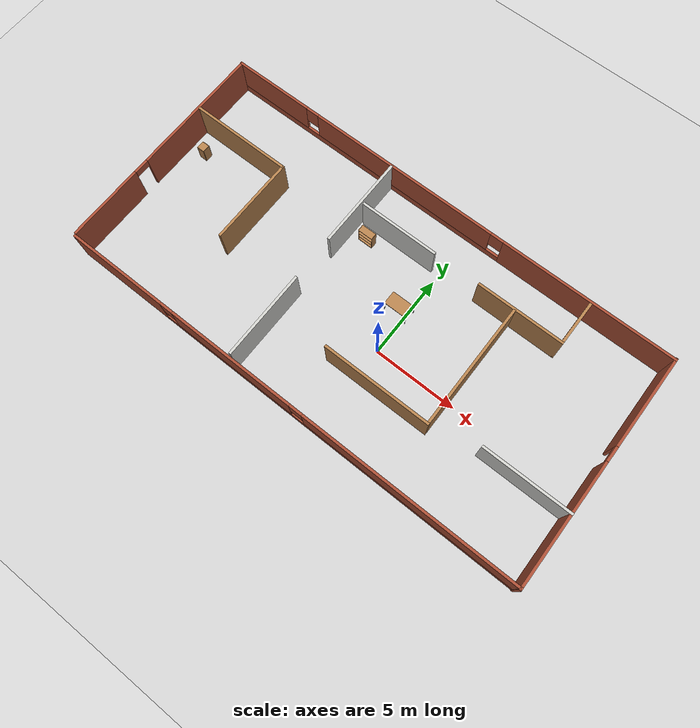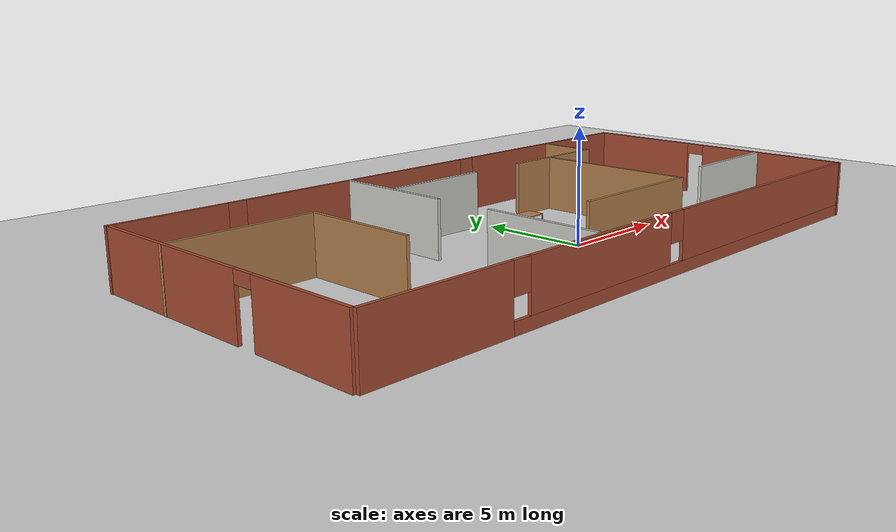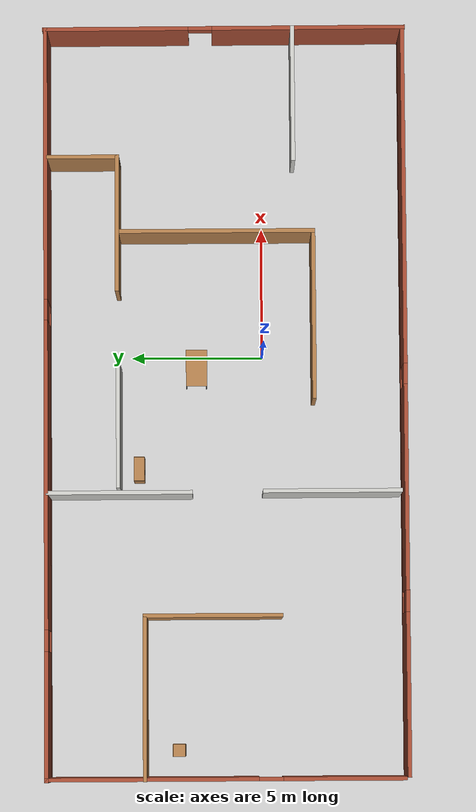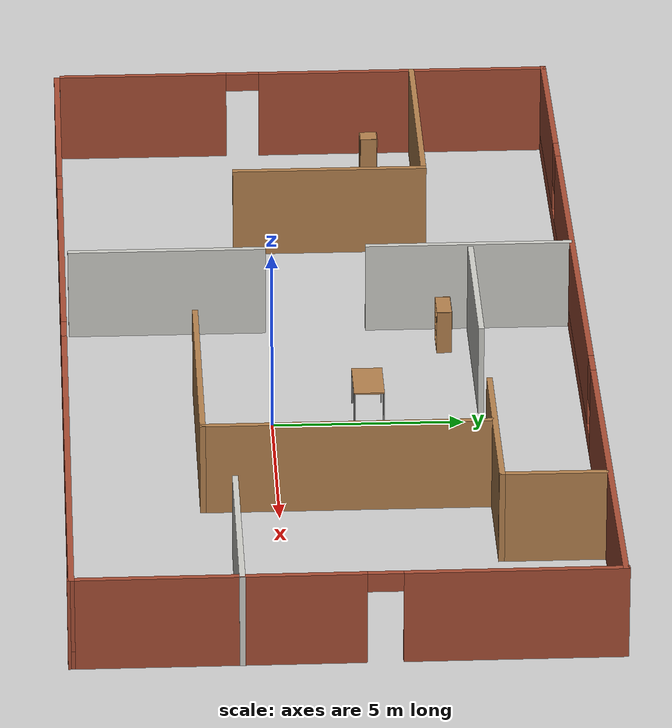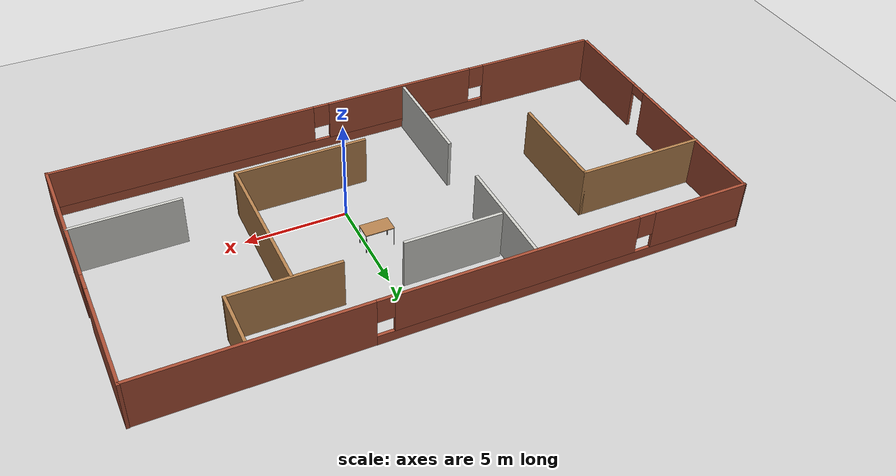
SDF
<sdf version="1.6">
 <world name="default">
  <light name="sun" type="directional">
   <pose>0 0 10 0 -0 0</pose>
   <diffuse>0.8 0.8 0.8 1</diffuse>
   <specular>0.1 0.1 0.1 1</specular>
   <attenuation>
    <range>1000</range>
    <constant>0.9</constant>
    <linear>0.01</linear>
    <quadratic>0.001</quadratic>
   </attenuation>
   <direction>-0.5 0.5 -1</direction>
  </light>
  <model name="ground_plane">
   <static>1</static>
   <link name="link">
    <collision name="collision">
     <geometry><plane><normal>0 0 1</normal><size>100 100</size></plane></geometry>
     <surface><friction><ode><mu>100</mu><mu2>50</mu2></ode></friction></surface>
    </collision>
    <visual name="visual">
     <cast_shadows>0</cast_shadows>
     <geometry><plane><normal>0 0 1</normal><size>100 100</size></plane></geometry>
     <material>
      <script><uri>file://media/materials/scripts/gazebo.material</uri><name>Gazebo/Grey</name></script>
     </material>
    </visual>
   </link>
  </model>
  <gravity>0 0 -9.8</gravity>
  <magnetic_field>6e-06 2.3e-05 -4.2e-05</magnetic_field>
  <atmosphere type="adiabatic"/>
  <physics name="default_physics" default="0" type="ode">
   <max_step_size>0.001</max_step_size>
   <real_time_factor>1</real_time_factor>
   <real_time_update_rate>1000</real_time_update_rate>
  </physics>
  <scene><ambient>0.4 0.4 0.4 1</ambient><background>0.7 0.7 0.7 1</background><shadows>1</shadows></scene>
  <spherical_coordinates>
   <surface_model>EARTH_WGS84</surface_model>
   <latitude_deg>0</latitude_deg>
   <longitude_deg>0</longitude_deg>
   <elevation>0</elevation>
   <heading_deg>0</heading_deg>
  </spherical_coordinates>
  <model name="wall2">
   <pose>-1.83862 1.41721 0 0 -0 0</pose>
   <link name="Wall_0">
    <pose>0.0701 -6.80102 0 0 0 -0.002151</pose>
    <visual name="Wall_0_Visual_0">
     <pose>-11.2183 0 1.25 0 -0 0</pose>
     <geometry><box><size>6.15515 0.15 2.5</size></box></geometry>
     <material>
      <script><uri>file://media/materials/scripts/gazebo.material</uri><name>Gazebo/Bricks</name></script>
      <ambient>1 1 1 1</ambient>
     </material>
    </visual>
    <collision name="Wall_0_Collision_0">
     <geometry><box><size>6.15515 0.15 2.5</size></box></geometry>
     <pose>-11.2183 0 1.25 0 -0 0</pose>
    </collision>
    <visual name="Wall_0_Visual_1">
     <pose>3.07757 0 0.25 0 -0 0</pose>
     <geometry><box><size>22.4367 0.15 0.5</size></box></geometry>
     <material>
      <script><uri>file://media/materials/scripts/gazebo.material</uri><name>Gazebo/Bricks</name></script>
      <ambient>1 1 1 1</ambient>
     </material>
    </visual>
    <collision name="Wall_0_Collision_1">
     <geometry><box><size>22.4367 0.15 0.5</size></box></geometry>
     <pose>3.07757 0 0.25 0 -0 0</pose>
    </collision>
    <visual name="Wall_0_Visual_2">
     <pose>-3.44996 0 1.5 0 -0 0</pose>
     <geometry><box><size>7.78163 0.15 2</size></box></geometry>
     <material>
      <script><uri>file://media/materials/scripts/gazebo.material</uri><name>Gazebo/Bricks</name></script>
      <ambient>1 1 1 1</ambient>
     </material>
    </visual>
    <collision name="Wall_0_Collision_2">
     <geometry><box><size>7.78163 0.15 2</size></box></geometry>
     <pose>-3.44996 0 1.5 0 -0 0</pose>
    </collision>
    <visual name="Wall_0_Visual_3">
     <pose>7.76839 0 1.5 0 -0 0</pose>
     <geometry><box><size>13.0551 0.15 2</size></box></geometry>
     <material>
      <script><uri>file://media/materials/scripts/gazebo.material</uri><name>Gazebo/Bricks</name></script>
      <ambient>1 1 1 1</ambient>
     </material>
    </visual>
    <collision name="Wall_0_Collision_3">
     <geometry><box><size>13.0551 0.15 2</size></box></geometry>
     <pose>7.76839 0 1.5 0 -0 0</pose>
    </collision>
    <visual name="Wall_0_Visual_4">
     <pose>-7.74077 0 1.9 0 -0 0</pose>
     <geometry><box><size>0.8 0.15 1.2</size></box></geometry>
     <material>
      <script><uri>file://media/materials/scripts/gazebo.material</uri><name>Gazebo/Bricks</name></script>
      <ambient>1 1 1 1</ambient>
     </material>
    </visual>
    <collision name="Wall_0_Collision_4">
     <geometry><box><size>0.8 0.15 1.2</size></box></geometry>
     <pose>-7.74077 0 1.9 0 -0 0</pose>
    </collision>
    <visual name="Wall_0_Visual_5">
     <pose>0.840861 0 1.9 0 -0 0</pose>
     <geometry><box><size>0.8 0.15 1.2</size></box></geometry>
     <material>
      <script><uri>file://media/materials/scripts/gazebo.material</uri><name>Gazebo/Bricks</name></script>
      <ambient>1 1 1 1</ambient>
     </material>
    </visual>
    <collision name="Wall_0_Collision_5">
     <geometry><box><size>0.8 0.15 1.2</size></box></geometry>
     <pose>0.840861 0 1.9 0 -0 0</pose>
    </collision>
   </link>
   <link name="Wall_1">
    <pose>14.2757 0 0 0 -0 1.57302</pose>
    <visual name="Wall_1_Visual_0">
     <pose>-3.24103 0 1.25 0 -0 0</pose>
     <geometry><box><size>7.39238 0.15 2.5</size></box></geometry>
     <material>
      <script><uri>file://media/materials/scripts/gazebo.material</uri><name>Gazebo/Bricks</name></script>
      <ambient>1 1 1 1</ambient>
     </material>
    </visual>
    <collision name="Wall_1_Collision_0">
     <geometry><box><size>7.39238 0.15 2.5</size></box></geometry>
     <pose>-3.24103 0 1.25 0 -0 0</pose>
    </collision>
    <visual name="Wall_1_Visual_1">
     <pose>4.14619 0 1.25 0 -0 0</pose>
     <geometry><box><size>5.58206 0.15 2.5</size></box></geometry>
     <material>
      <script><uri>file://media/materials/scripts/gazebo.material</uri><name>Gazebo/Bricks</name></script>
      <ambient>1 1 1 1</ambient>
     </material>
    </visual>
    <collision name="Wall_1_Collision_1">
     <geometry><box><size>5.58206 0.15 2.5</size></box></geometry>
     <pose>4.14619 0 1.25 0 -0 0</pose>
    </collision>
    <visual name="Wall_1_Visual_2">
     <pose>0.905161 0 2.25 0 -0 0</pose>
     <geometry><box><size>0.9 0.15 0.5</size></box></geometry>
     <material>
      <script><uri>file://media/materials/scripts/gazebo.material</uri><name>Gazebo/Bricks</name></script>
      <ambient>1 1 1 1</ambient>
     </material>
    </visual>
    <collision name="Wall_1_Collision_2">
     <geometry><box><size>0.9 0.15 0.5</size></box></geometry>
     <pose>0.905161 0 2.25 0 -0 0</pose>
    </collision>
   </link>
   <link name="Wall_10">
    <collision name="Wall_10_Collision">
     <geometry><box><size>5.25 0.15 2.5</size></box></geometry>
     <pose>0 0 1.25 0 -0 0</pose>
    </collision>
    <visual name="Wall_10_Visual">
     <pose>0 0 1.25 0 -0 0</pose>
     <geometry><box><size>5.25 0.15 2.5</size></box></geometry>
     <material>
      <script><uri>file://media/materials/scripts/gazebo.material</uri><name>Gazebo/CeilingTiled</name></script>
      <ambient>1 0.764706 0.305882 1</ambient>
     </material>
    </visual>
    <pose>-3.51097 -4.01292 0 0 0 -1.5708</pose>
   </link>
   <link name="Wall_12">
    <collision name="Wall_12_Collision">
     <geometry><box><size>4.75 0.15 2.5</size></box></geometry>
     <pose>0 0 1.25 0 -0 0</pose>
    </collision>
    <visual name="Wall_12_Visual">
     <pose>0 0 1.25 0 -0 0</pose>
     <geometry><box><size>4.75 0.15 2.5</size></box></geometry>
     <material>
      <script><uri>file://media/materials/scripts/gazebo.material</uri><name>Gazebo/CeilingTiled</name></script>
      <ambient>1 1 1 1</ambient>
     </material>
    </visual>
    <pose>-0.999901 4.06014 0 0 -0 0</pose>
   </link>
   <link name="Wall_14">
    <collision name="Wall_14_Collision">
     <geometry><box><size>5.25 0.15 2.5</size></box></geometry>
     <pose>0 0 1.25 0 -0 0</pose>
    </collision>
    <visual name="Wall_14_Visual">
     <pose>0 0 1.25 0 -0 0</pose>
     <geometry><box><size>5.25 0.15 2.5</size></box></geometry>
     <material>
      <script><uri>file://media/materials/scripts/gazebo.material</uri><name>Gazebo/Wood</name></script>
      <ambient>1 1 1 1</ambient>
     </material>
    </visual>
    <pose>6.74318 4.09532 0 0 -0 0</pose>
   </link>
   <link name="Wall_16">
    <collision name="Wall_16_Collision">
     <geometry><box><size>2.75 0.15 2.5</size></box></geometry>
     <pose>0 0 1.25 0 -0 0</pose>
    </collision>
    <visual name="Wall_16_Visual">
     <pose>0 0 1.25 0 -0 0</pose>
     <geometry><box><size>2.75 0.15 2.5</size></box></geometry>
     <material>
      <script><uri>file://media/materials/scripts/gazebo.material</uri><name>Gazebo/Wood</name></script>
      <ambient>1 1 1 1</ambient>
     </material>
    </visual>
    <pose>9.29317 5.39532 0 0 -0 1.5708</pose>
   </link>
   <link name="Wall_18">
    <collision name="Wall_18_Collision">
     <geometry><box><size>7.5 0.15 2.5</size></box></geometry>
     <pose>0 0 1.25 0 -0 0</pose>
    </collision>
    <visual name="Wall_18_Visual">
     <pose>0 0 1.25 0 -0 0</pose>
     <geometry><box><size>7.5 0.15 2.5</size></box></geometry>
     <material>
      <script><uri>file://media/materials/scripts/gazebo.material</uri><name>Gazebo/Wood</name></script>
      <ambient>1 1 1 1</ambient>
     </material>
    </visual>
    <pose>6.40944 0.314786 0 0 0 -1.5708</pose>
   </link>
   <link name="Wall_2">
    <pose>-0.015256 6.78573 0 0 0 -3.13838</pose>
    <visual name="Wall_2_Visual_0">
     <pose>-9.09297 0 1.25 0 -0 0</pose>
     <geometry><box><size>10.5155 0.15 2.5</size></box></geometry>
     <material>
      <script><uri>file://media/materials/scripts/gazebo.material</uri><name>Gazebo/Bricks</name></script>
      <ambient>1 1 1 1</ambient>
     </material>
    </visual>
    <collision name="Wall_2_Collision_0">
     <geometry><box><size>10.5155 0.15 2.5</size></box></geometry>
     <pose>-9.09297 0 1.25 0 -0 0</pose>
    </collision>
    <visual name="Wall_2_Visual_1">
     <pose>5.25776 0 0.25 0 -0 0</pose>
     <geometry><box><size>18.1859 0.15 0.5</size></box></geometry>
     <material>
      <script><uri>file://media/materials/scripts/gazebo.material</uri><name>Gazebo/Bricks</name></script>
      <ambient>1 1 1 1</ambient>
     </material>
    </visual>
    <collision name="Wall_2_Collision_1">
     <geometry><box><size>18.1859 0.15 0.5</size></box></geometry>
     <pose>5.25776 0 0.25 0 -0 0</pose>
    </collision>
    <visual name="Wall_2_Visual_2">
     <pose>2.81619 0 1.5 0 -0 0</pose>
     <geometry><box><size>11.7028 0.15 2</size></box></geometry>
     <material>
      <script><uri>file://media/materials/scripts/gazebo.material</uri><name>Gazebo/Bricks</name></script>
      <ambient>1 1 1 1</ambient>
     </material>
    </visual>
    <collision name="Wall_2_Collision_2">
     <geometry><box><size>11.7028 0.15 2</size></box></geometry>
     <pose>2.81619 0 1.5 0 -0 0</pose>
    </collision>
    <visual name="Wall_2_Visual_3">
     <pose>11.9092 0 1.5 0 -0 0</pose>
     <geometry><box><size>4.88314 0.15 2</size></box></geometry>
     <material>
      <script><uri>file://media/materials/scripts/gazebo.material</uri><name>Gazebo/Bricks</name></script>
      <ambient>1 1 1 1</ambient>
     </material>
    </visual>
    <collision name="Wall_2_Collision_3">
     <geometry><box><size>4.88314 0.15 2</size></box></geometry>
     <pose>11.9092 0 1.5 0 -0 0</pose>
    </collision>
    <visual name="Wall_2_Visual_4">
     <pose>-3.43521 0 1.9 0 -0 0</pose>
     <geometry><box><size>0.8 0.15 1.2</size></box></geometry>
     <material>
      <script><uri>file://media/materials/scripts/gazebo.material</uri><name>Gazebo/Bricks</name></script>
      <ambient>1 1 1 1</ambient>
     </material>
    </visual>
    <collision name="Wall_2_Collision_4">
     <geometry><box><size>0.8 0.15 1.2</size></box></geometry>
     <pose>-3.43521 0 1.9 0 -0 0</pose>
    </collision>
    <visual name="Wall_2_Visual_5">
     <pose>9.06759 0 1.9 0 -0 0</pose>
     <geometry><box><size>0.8 0.15 1.2</size></box></geometry>
     <material>
      <script><uri>file://media/materials/scripts/gazebo.material</uri><name>Gazebo/Bricks</name></script>
      <ambient>1 1 1 1</ambient>
     </material>
    </visual>
    <collision name="Wall_2_Collision_5">
     <geometry><box><size>0.8 0.15 1.2</size></box></geometry>
     <pose>9.06759 0 1.9 0 -0 0</pose>
    </collision>
   </link>
   <link name="Wall_20">
    <collision name="Wall_20_Collision">
     <geometry><box><size>6.5 0.15 2.5</size></box></geometry>
     <pose>0 0 1.25 0 -0 0</pose>
    </collision>
    <visual name="Wall_20_Visual">
     <pose>0 0 1.25 0 -0 0</pose>
     <geometry><box><size>6.5 0.15 2.5</size></box></geometry>
     <material>
      <script><uri>file://media/materials/scripts/gazebo.material</uri><name>Gazebo/Wood</name></script>
      <ambient>1 1 1 1</ambient>
     </material>
    </visual>
    <pose>3.23444 -3.36021 0 0 -0 3.14159</pose>
   </link>
   <link name="Wall_22">
    <collision name="Wall_22_Collision">
     <geometry><box><size>5.25 0.15 2.5</size></box></geometry>
     <pose>0 0 1.25 0 -0 0</pose>
    </collision>
    <visual name="Wall_22_Visual">
     <pose>0 0 1.25 0 -0 0</pose>
     <geometry><box><size>5.25 0.15 2.5</size></box></geometry>
     <material>
      <script><uri>file://media/materials/scripts/gazebo.material</uri><name>Gazebo/CeilingTiled</name></script>
      <ambient>1 1 1 1</ambient>
     </material>
    </visual>
    <pose>11.7395 -2.62382 0 0 -0 3.14159</pose>
   </link>
   <link name="Wall_3">
    <pose>-14.2603 0.06484 0 0 0 -1.5708</pose>
    <visual name="Wall_3_Visual_0">
     <pose>-2.75484 0 1.25 0 -0 0</pose>
     <geometry><box><size>7.99032 0.15 2.5</size></box></geometry>
     <material>
      <script><uri>file://media/materials/scripts/gazebo.material</uri><name>Gazebo/Bricks</name></script>
      <ambient>1 1 1 1</ambient>
     </material>
    </visual>
    <collision name="Wall_3_Collision_0">
     <geometry><box><size>7.99032 0.15 2.5</size></box></geometry>
     <pose>-2.75484 0 1.25 0 -0 0</pose>
    </collision>
    <visual name="Wall_3_Visual_1">
     <pose>4.44516 0 1.25 0 -0 0</pose>
     <geometry><box><size>4.60968 0.15 2.5</size></box></geometry>
     <material>
      <script><uri>file://media/materials/scripts/gazebo.material</uri><name>Gazebo/Bricks</name></script>
      <ambient>1 1 1 1</ambient>
     </material>
    </visual>
    <collision name="Wall_3_Collision_1">
     <geometry><box><size>4.60968 0.15 2.5</size></box></geometry>
     <pose>4.44516 0 1.25 0 -0 0</pose>
    </collision>
    <visual name="Wall_3_Visual_2">
     <pose>1.69032 0 2.25 0 -0 0</pose>
     <geometry><box><size>0.9 0.15 0.5</size></box></geometry>
     <material>
      <script><uri>file://media/materials/scripts/gazebo.material</uri><name>Gazebo/Bricks</name></script>
      <ambient>1 1 1 1</ambient>
     </material>
    </visual>
    <collision name="Wall_3_Collision_2">
     <geometry><box><size>0.9 0.15 0.5</size></box></geometry>
     <pose>1.69032 0 2.25 0 -0 0</pose>
    </collision>
   </link>
   <link name="Wall_5">
    <collision name="Wall_5_Collision">
     <geometry><box><size>6.25 0.15 2.5</size></box></geometry>
     <pose>0 0 1.25 0 -0 0</pose>
    </collision>
    <visual name="Wall_5_Visual">
     <pose>0 0 1.25 0 -0 0</pose>
     <geometry><box><size>6.25 0.15 2.5</size></box></geometry>
     <material>
      <script><uri>file://media/materials/scripts/gazebo.material</uri><name>Gazebo/Wood</name></script>
      <ambient>0.435294 0.796078 0.67451 1</ambient>
     </material>
    </visual>
    <pose>-11.2257 3.07514 0 0 -0 0</pose>
   </link>
   <link name="Wall_6">
    <collision name="Wall_6_Collision">
     <geometry><box><size>5.25 0.15 2.5</size></box></geometry>
     <pose>0 0 1.25 0 -0 0</pose>
    </collision>
    <visual name="Wall_6_Visual">
     <pose>0 0 1.25 0 -0 0</pose>
     <geometry><box><size>5.25 0.15 2.5</size></box></geometry>
     <material>
      <script><uri>file://media/materials/scripts/gazebo.material</uri><name>Gazebo/Wood</name></script>
      <ambient>0.435294 0.796078 0.67451 1</ambient>
     </material>
    </visual>
    <pose>-8.17568 0.525138 0 0 0 -1.5708</pose>
   </link>
   <link name="Wall_8">
    <collision name="Wall_8_Collision">
     <geometry><box><size>5.5 0.15 2.5</size></box></geometry>
     <pose>0 0 1.25 0 -0 0</pose>
    </collision>
    <visual name="Wall_8_Visual">
     <pose>0 0 1.25 0 -0 0</pose>
     <geometry><box><size>5.5 0.15 2.5</size></box></geometry>
     <material>
      <script><uri>file://media/materials/scripts/gazebo.material</uri><name>Gazebo/CeilingTiled</name></script>
      <ambient>1 1 1 1</ambient>
     </material>
    </visual>
    <pose>-3.54615 4.02355 0 0 0 -1.5708</pose>
   </link>
   <static>1</static>
  </model>
  <model name="cabinet">
   <static>1</static>
   <link name="cabinet_bottom_plate">
    <inertial>
     <pose>0 0 -1 0 -0 0</pose>
     <inertia><ixx>2.05</ixx><ixy>0</ixy><ixz>0</ixz><iyy>2.05</iyy><iyz>0</iyz><izz>2.05</izz></inertia>
     <mass>25</mass>
    </inertial>
    <collision name="cabinet_bottom_plate_geom">
     <pose>0 0 0.01 0 -0 0</pose>
     <geometry><box><size>0.45 0.45 0.02</size></box></geometry>
    </collision>
    <visual name="cabinet_bottom_plate_geom_visual">
     <pose>0 0 0.01 0 -0 0</pose>
     <geometry><box><size>0.45 0.45 0.02</size></box></geometry>
     <material>
      <script><uri>file://media/materials/scripts/gazebo.material</uri><name>Gazebo/Wood</name></script>
     </material>
    </visual>
    <collision name="cabinet_bottom_plate_geom_cabinet_back_plate">
     <pose>0.235 0 0.51 0 -0 0</pose>
     <geometry><box><size>0.02 0.45 1.02</size></box></geometry>
    </collision>
    <visual name="cabinet_bottom_plate_geom_cabinet_back_plate_visual">
     <pose>0.235 0 0.51 0 -0 0</pose>
     <geometry><box><size>0.02 0.45 1.02</size></box></geometry>
     <material>
      <script><uri>file://media/materials/scripts/gazebo.material</uri><name>Gazebo/Wood</name></script>
     </material>
    </visual>
    <collision name="cabinet_bottom_plate_geom_cabinet_left_plate">
     <pose>0 0.235 0.51 0 -0 0</pose>
     <geometry><box><size>0.45 0.02 1.02</size></box></geometry>
    </collision>
    <visual name="cabinet_bottom_plate_geom_cabinet_left_plate_visual">
     <pose>0 0.235 0.51 0 -0 0</pose>
     <geometry><box><size>0.45 0.02 1.02</size></box></geometry>
     <material>
      <script><uri>file://media/materials/scripts/gazebo.material</uri><name>Gazebo/Wood</name></script>
     </material>
    </visual>
    <collision name="cabinet_bottom_plate_geom_cabinet_middle_plate">
     <pose>0 0 0.51 0 -0 0</pose>
     <geometry><box><size>0.45 0.45 0.02</size></box></geometry>
    </collision>
    <visual name="cabinet_bottom_plate_geom_cabinet_middle_plate_visual">
     <pose>0 0 0.51 0 -0 0</pose>
     <geometry><box><size>0.45 0.45 0.02</size></box></geometry>
     <material>
      <script><uri>file://media/materials/scripts/gazebo.material</uri><name>Gazebo/Wood</name></script>
     </material>
    </visual>
    <collision name="cabinet_bottom_plate_geom_cabinet_right_plate">
     <pose>0 -0.235 0.51 0 -0 0</pose>
     <geometry><box><size>0.45 0.02 1.02</size></box></geometry>
    </collision>
    <visual name="cabinet_bottom_plate_geom_cabinet_right_plate_visual">
     <pose>0 -0.235 0.51 0 -0 0</pose>
     <geometry><box><size>0.45 0.02 1.02</size></box></geometry>
     <material>
      <script><uri>file://media/materials/scripts/gazebo.material</uri><name>Gazebo/Wood</name></script>
     </material>
    </visual>
    <collision name="cabinet_bottom_plate_geom_cabinet_top_plate">
     <pose>0 0 1.01 0 -0 0</pose>
     <geometry><box><size>0.45 0.45 0.02</size></box></geometry>
    </collision>
    <visual name="cabinet_bottom_plate_geom_cabinet_top_plate_visual">
     <pose>0 0 1.01 0 -0 0</pose>
     <geometry><box><size>0.45 0.45 0.02</size></box></geometry>
     <material>
      <script><uri>file://media/materials/scripts/gazebo.material</uri><name>Gazebo/Wood</name></script>
     </material>
    </visual>
   </link>
   <pose>-15.0365 3.24231 0 0 -0 0</pose>
  </model>
  <model name="bookshelf">
   <static>1</static>
   <link name="link">
    <inertial><mass>1</mass></inertial>
    <collision name="back">
     <pose>0 0.005 0.6 0 -0 0</pose>
     <geometry><box><size>0.9 0.01 1.2</size></box></geometry>
    </collision>
    <visual name="visual1">
     <pose>0 0.005 0.6 0 -0 0</pose>
     <geometry><box><size>0.9 0.01 1.2</size></box></geometry>
     <material>
      <script><uri>file://media/materials/scripts/gazebo.material</uri><name>Gazebo/Wood</name></script>
     </material>
    </visual>
    <collision name="left_side">
     <pose>0.45 -0.195 0.6 0 -0 0</pose>
     <geometry><box><size>0.02 0.4 1.2</size></box></geometry>
    </collision>
    <visual name="visual2">
     <pose>0.45 -0.195 0.6 0 -0 0</pose>
     <geometry><box><size>0.02 0.4 1.2</size></box></geometry>
     <material>
      <script><uri>file://media/materials/scripts/gazebo.material</uri><name>Gazebo/Wood</name></script>
     </material>
    </visual>
    <collision name="right_side">
     <pose>-0.45 -0.195 0.6 0 -0 0</pose>
     <geometry><box><size>0.02 0.4 1.2</size></box></geometry>
    </collision>
    <visual name="visual3">
     <pose>-0.45 -0.195 0.6 0 -0 0</pose>
     <geometry><box><size>0.02 0.4 1.2</size></box></geometry>
     <material>
      <script><uri>file://media/materials/scripts/gazebo.material</uri><name>Gazebo/Wood</name></script>
     </material>
    </visual>
    <collision name="bottom">
     <pose>0 -0.195 0.03 0 -0 0</pose>
     <geometry><box><size>0.88 0.4 0.06</size></box></geometry>
    </collision>
    <visual name="visual4">
     <pose>0 -0.195 0.03 0 -0 0</pose>
     <geometry><box><size>0.88 0.4 0.06</size></box></geometry>
     <material>
      <script><uri>file://media/materials/scripts/gazebo.material</uri><name>Gazebo/Wood</name></script>
     </material>
    </visual>
    <collision name="top">
     <pose>0 -0.195 1.19 0 -0 0</pose>
     <geometry><box><size>0.88 0.4 0.02</size></box></geometry>
    </collision>
    <visual name="visual5">
     <pose>0 -0.195 1.19 0 -0 0</pose>
     <geometry><box><size>0.88 0.4 0.02</size></box></geometry>
     <material>
      <script><uri>file://media/materials/scripts/gazebo.material</uri><name>Gazebo/Wood</name></script>
     </material>
    </visual>
    <collision name="low_shelf">
     <pose>0 -0.195 0.43 0 -0 0</pose>
     <geometry><box><size>0.88 0.4 0.02</size></box></geometry>
    </collision>
    <visual name="visual6">
     <pose>0 -0.195 0.43 0 -0 0</pose>
     <geometry><box><size>0.88 0.4 0.02</size></box></geometry>
     <material>
      <script><uri>file://media/materials/scripts/gazebo.material</uri><name>Gazebo/Wood</name></script>
     </material>
    </visual>
    <collision name="high_shelf">
     <pose>0 -0.195 0.8 0 -0 0</pose>
     <geometry><box><size>0.88 0.4 0.02</size></box></geometry>
    </collision>
    <visual name="visual7">
     <pose>0 -0.195 0.8 0 -0 0</pose>
     <geometry><box><size>0.88 0.4 0.02</size></box></geometry>
     <material>
      <script><uri>file://media/materials/scripts/gazebo.material</uri><name>Gazebo/Wood</name></script>
     </material>
    </visual>
   </link>
   <pose>-4.37804 4.91419 0 0 -0 0</pose>
  </model>
  <model name="table">
   <static>0</static>
   <link name="link">
    <collision name="surface">
     <pose>0 0 1 0 -0 0</pose>
     <geometry><box><size>1.5 0.8 0.03</size></box></geometry>
     <surface><friction><ode><mu>0.6</mu><mu2>0.6</mu2></ode></friction></surface>
    </collision>
    <visual name="visual1">
     <pose>0 0 1 0 -0 0</pose>
     <geometry><box><size>1.4 0.8 0.04</size></box></geometry>
     <material>
      <script><uri>file://media/materials/scripts/gazebo.material</uri><name>Gazebo/Wood</name></script>
     </material>
    </visual>
    <collision name="front_left_leg">
     <pose>0.68 0.38 0.5 0 -0 0</pose>
     <geometry><cylinder><radius>0.02</radius><length>1</length></cylinder></geometry>
    </collision>
    <visual name="front_left_leg">
     <pose>0.68 0.38 0.5 0 -0 0</pose>
     <geometry><cylinder><radius>0.02</radius><length>1</length></cylinder></geometry>
     <material>
      <script><uri>file://media/materials/scripts/gazebo.material</uri><name>Gazebo/Grey</name></script>
     </material>
    </visual>
    <collision name="front_right_leg">
     <pose>0.68 -0.38 0.5 0 -0 0</pose>
     <geometry><cylinder><radius>0.02</radius><length>1</length></cylinder></geometry>
    </collision>
    <visual name="front_right_leg">
     <pose>0.68 -0.38 0.5 0 -0 0</pose>
     <geometry><cylinder><radius>0.02</radius><length>1</length></cylinder></geometry>
     <material>
      <script><uri>file://media/materials/scripts/gazebo.material</uri><name>Gazebo/Grey</name></script>
     </material>
    </visual>
    <collision name="back_right_leg">
     <pose>-0.68 -0.38 0.5 0 -0 0</pose>
     <geometry><cylinder><radius>0.02</radius><length>1</length></cylinder></geometry>
    </collision>
    <visual name="back_right_leg">
     <pose>-0.68 -0.38 0.5 0 -0 0</pose>
     <geometry><cylinder><radius>0.02</radius><length>1</length></cylinder></geometry>
     <material>
      <script><uri>file://media/materials/scripts/gazebo.material</uri><name>Gazebo/Grey</name></script>
     </material>
    </visual>
    <collision name="back_left_leg">
     <pose>-0.68 0.38 0.5 0 -0 0</pose>
     <geometry><cylinder><radius>0.02</radius><length>1</length></cylinder></geometry>
    </collision>
    <visual name="back_left_leg">
     <pose>-0.68 0.38 0.5 0 -0 0</pose>
     <geometry><cylinder><radius>0.02</radius><length>1</length></cylinder></geometry>
     <material>
      <script><uri>file://media/materials/scripts/gazebo.material</uri><name>Gazebo/Grey</name></script>
     </material>
    </visual>
    <inertial>
     <inertia><ixx>1</ixx><ixy>0</ixy><ixz>0</ixz><iyy>1</iyy><iyz>0</iyz><izz>1</izz></inertia>
     <mass>1</mass>
    </inertial>
   </link>
   <pose>-0.496192 2.52493 -9e-06 0 -1e-06 0</pose>
  </model>
  <plugin filename="libcollision_map_creator.so" name="collision_map_creator"/>
 </world>
</sdf>
